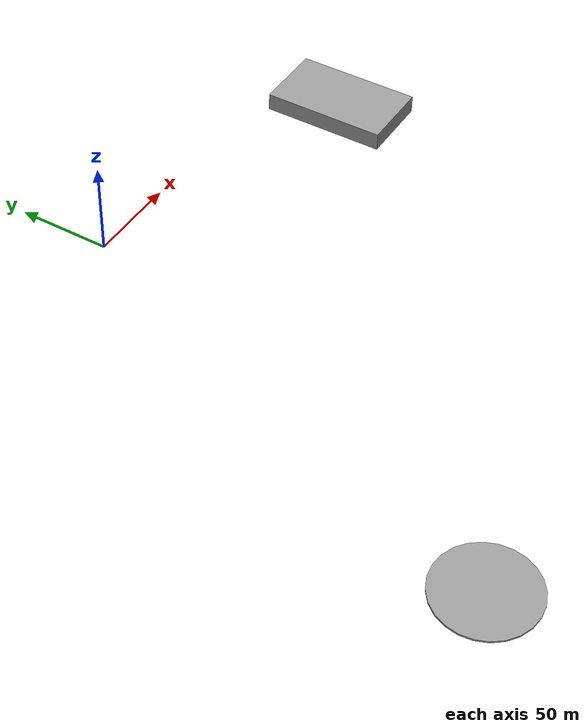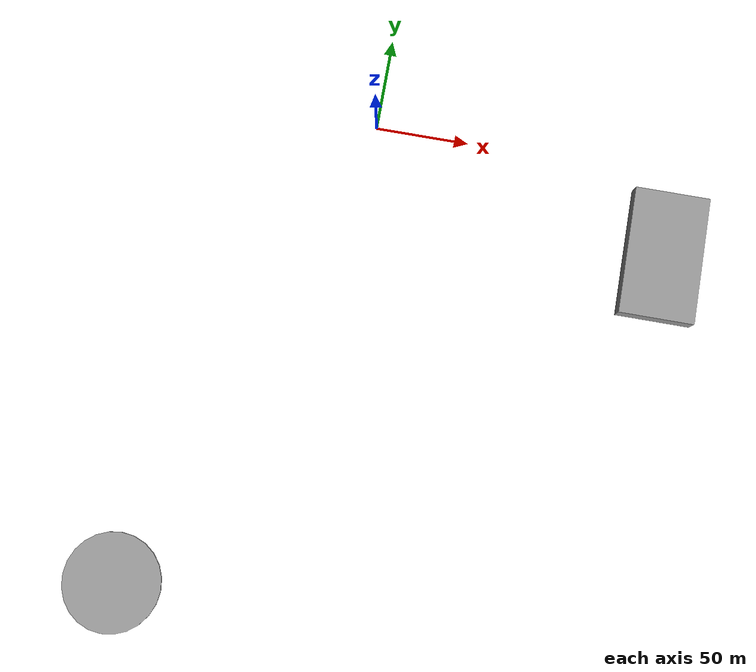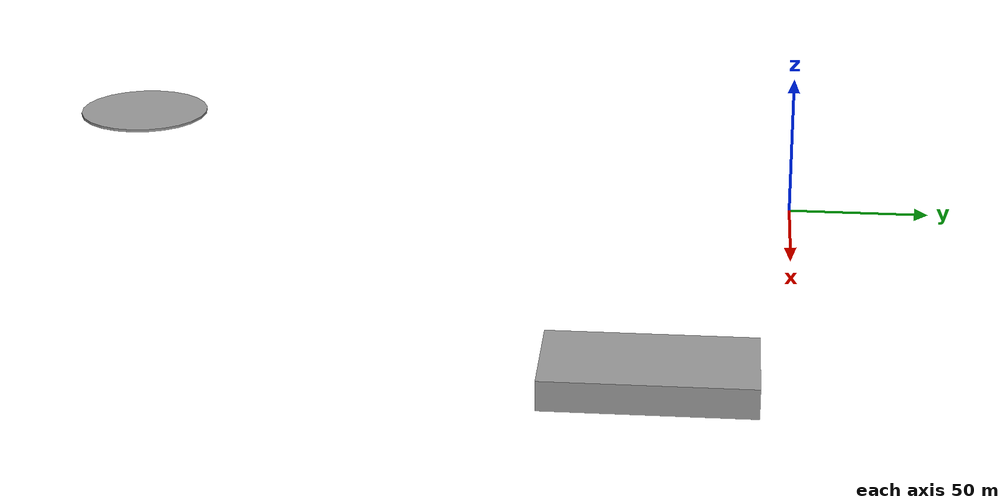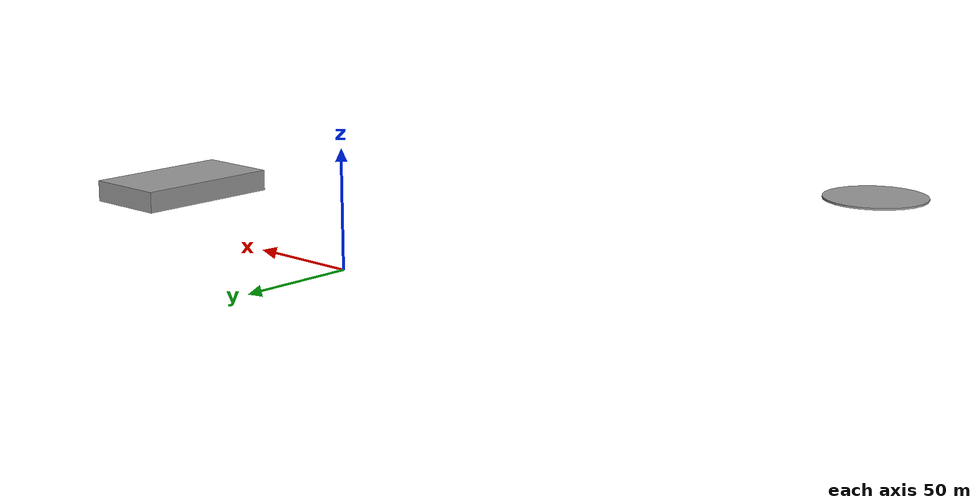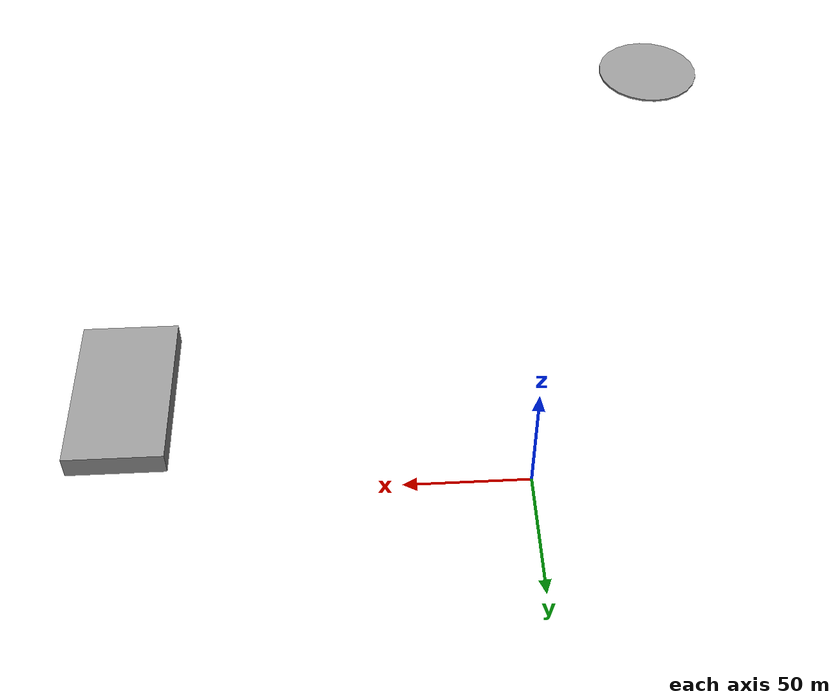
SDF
<sdf version="1.6">
 <world name="default">
  <model name="unit_cylinder_0">
   <pose>-89.7513 -259.02 0.551437 1.3e-05 -2e-06 -0.002053</pose>
   <link name="link">
    <inertial>
     <mass>1</mass>
     <inertia><ixx>0.145833</ixx><ixy>0</ixy><ixz>0</ixz><iyy>0.145833</iyy><iyz>0</iyz><izz>0.125</izz></inertia>
    </inertial>
    <collision name="collision">
     <geometry><cylinder><radius>25.3369</radius><length>1</length></cylinder></geometry>
    </collision>
    <visual name="visual">
     <geometry><cylinder><radius>25.3369</radius><length>1</length></cylinder></geometry>
     <material>
      <script><name>Gazebo/Grey</name><uri>file://media/materials/scripts/gazebo.material</uri></script>
     </material>
    </visual>
   </link>
  </model>
  <model name="unit_box">
   <pose>160.892 -44.7695 4.91027 1e-06 -8e-06 0.00291</pose>
   <link name="link">
    <inertial>
     <mass>1</mass>
     <inertia>
      <ixx>0.166667</ixx>
      <ixy>0</ixy>
      <ixz>0</ixz>
      <iyy>0.166667</iyy>
      <iyz>0</iyz>
      <izz>0.166667</izz>
     </inertia>
    </inertial>
    <collision name="collision"><geometry><box><size>39.4334 67.853 9.82098</size></box></geometry></collision>
    <visual name="visual">
     <geometry><box><size>39.4334 67.853 9.82098</size></box></geometry>
     <material>
      <script><name>Gazebo/Grey</name><uri>file://media/materials/scripts/gazebo.material</uri></script>
     </material>
    </visual>
   </link>
  </model>
 </world>
</sdf>
